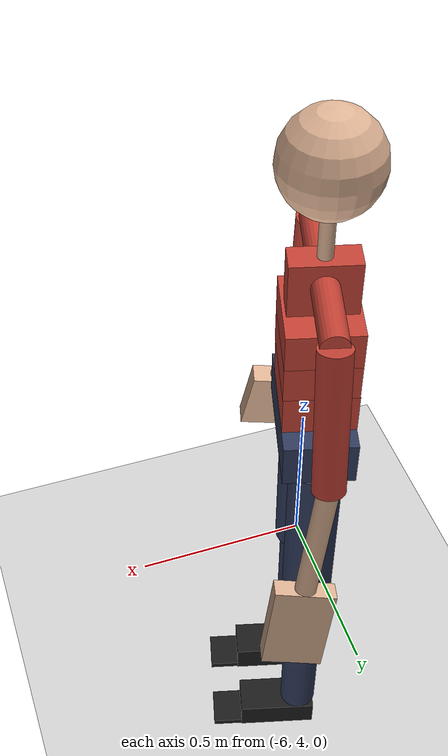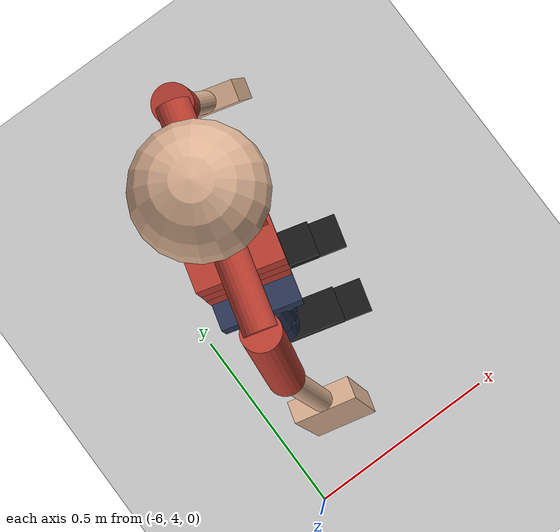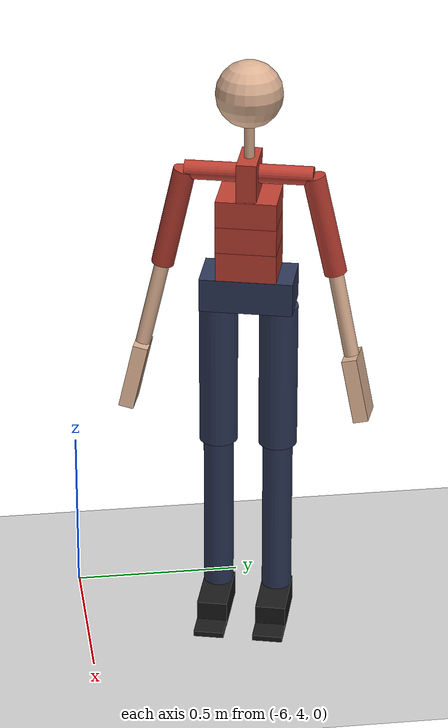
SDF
<sdf version="1.6">
 <world name="robocup_casa">
  <include><uri>model://sun</uri></include>
  <include><uri>model://ground_plane</uri></include>
  <model name="persona_lavanderia">
   <static>true</static>
   <link name="cuerpo">
    <collision name="c0">
     <pose>-5.7981 4.5098 1.0900 0.0000 -0.0000 -0.2660</pose>
     <geometry><box><size>0.1529 0.2785 0.1023</size></box></geometry>
    </collision>
    <visual name="v0_Pelvis">
     <pose>-5.7981 4.5098 1.0900 0.0000 -0.0000 -0.2660</pose>
     <geometry><box><size>0.1529 0.2785 0.1023</size></box></geometry>
     <material><ambient>0.18 0.22 0.35 1</ambient><diffuse>0.18 0.22 0.35 1</diffuse></material>
    </visual>
    <collision name="c1">
     <pose>-5.7986 4.5099 1.1863 0.0000 -0.0000 -0.2660</pose>
     <geometry><box><size>0.1529 0.1807 0.0902</size></box></geometry>
    </collision>
    <visual name="v1_L5">
     <pose>-5.7986 4.5099 1.1863 0.0000 -0.0000 -0.2660</pose>
     <geometry><box><size>0.1529 0.1807 0.0902</size></box></geometry>
     <material><ambient>0.75 0.25 0.20 1</ambient><diffuse>0.75 0.25 0.20 1</diffuse></material>
    </visual>
    <collision name="c2">
     <pose>-5.7976 4.5096 1.2722 0.0000 -0.0000 -0.2660</pose>
     <geometry><box><size>0.1529 0.1807 0.0815</size></box></geometry>
    </collision>
    <visual name="v2_L3">
     <pose>-5.7976 4.5096 1.2722 0.0000 -0.0000 -0.2660</pose>
     <geometry><box><size>0.1529 0.1807 0.0815</size></box></geometry>
     <material><ambient>0.75 0.25 0.20 1</ambient><diffuse>0.75 0.25 0.20 1</diffuse></material>
    </visual>
    <collision name="c3">
     <pose>-5.7976 4.5096 1.3537 0.0000 -0.0000 -0.2660</pose>
     <geometry><box><size>0.1529 0.1807 0.0815</size></box></geometry>
    </collision>
    <visual name="v3_T12">
     <pose>-5.7976 4.5096 1.3537 0.0000 -0.0000 -0.2660</pose>
     <geometry><box><size>0.1529 0.1807 0.0815</size></box></geometry>
     <material><ambient>0.75 0.25 0.20 1</ambient><diffuse>0.75 0.25 0.20 1</diffuse></material>
    </visual>
    <collision name="c4">
     <pose>-5.7976 4.5096 1.4526 0.0000 -0.0000 -0.2660</pose>
     <geometry><box><size>0.1395 0.0594 0.1163</size></box></geometry>
    </collision>
    <visual name="v4_T8">
     <pose>-5.7976 4.5096 1.4526 0.0000 -0.0000 -0.2660</pose>
     <geometry><box><size>0.1395 0.0594 0.1163</size></box></geometry>
     <material><ambient>0.75 0.25 0.20 1</ambient><diffuse>0.75 0.25 0.20 1</diffuse></material>
    </visual>
    <collision name="c5">
     <pose>-5.7976 4.5096 1.5590 0.0000 -0.0000 -0.2660</pose>
     <geometry><cylinder><radius>0.0155</radius><length>0.0965</length></cylinder></geometry>
    </collision>
    <visual name="v5_Neck">
     <pose>-5.7976 4.5096 1.5590 0.0000 -0.0000 -0.2660</pose>
     <geometry><cylinder><radius>0.0155</radius><length>0.0965</length></cylinder></geometry>
     <material><ambient>0.87 0.70 0.58 1</ambient><diffuse>0.87 0.70 0.58 1</diffuse></material>
    </visual>
    <collision name="c6">
     <pose>-5.7966 4.5094 1.7066 0.0000 -0.0000 -0.2660</pose>
     <geometry><sphere><radius>0.0993</radius></sphere></geometry>
    </collision>
    <visual name="v6_Head">
     <pose>-5.7966 4.5094 1.7066 0.0000 -0.0000 -0.2660</pose>
     <geometry><sphere><radius>0.0993</radius></sphere></geometry>
     <material><ambient>0.87 0.70 0.58 1</ambient><diffuse>0.87 0.70 0.58 1</diffuse></material>
    </visual>
    <collision name="c7">
     <pose>-5.8264 4.4040 1.4600 1.5708 -0.0000 -0.2660</pose>
     <geometry><cylinder><radius>0.0282</radius><length>0.1596</length></cylinder></geometry>
    </collision>
    <visual name="v7_RightShoulder">
     <pose>-5.8264 4.4040 1.4600 1.5708 -0.0000 -0.2660</pose>
     <geometry><cylinder><radius>0.0282</radius><length>0.1596</length></cylinder></geometry>
     <material><ambient>0.75 0.25 0.20 1</ambient><diffuse>0.75 0.25 0.20 1</diffuse></material>
    </visual>
    <collision name="c8">
     <pose>-5.8564 4.2940 1.3076 2.9208 -0.0000 -0.2660</pose>
     <geometry><cylinder><radius>0.0339</radius><length>0.3125</length></cylinder></geometry>
    </collision>
    <visual name="v8_RightUpperArm">
     <pose>-5.8564 4.2940 1.3076 2.9208 -0.0000 -0.2660</pose>
     <geometry><cylinder><radius>0.0339</radius><length>0.3125</length></cylinder></geometry>
     <material><ambient>0.75 0.25 0.20 1</ambient><diffuse>0.75 0.25 0.20 1</diffuse></material>
    </visual>
    <collision name="c9">
     <pose>-5.8542 4.2291 1.0314 2.9184 -0.1463 -0.2330</pose>
     <geometry><cylinder><radius>0.0226</radius><length>0.2565</length></cylinder></geometry>
    </collision>
    <visual name="v9_RightForeArm">
     <pose>-5.8542 4.2291 1.0314 2.9184 -0.1463 -0.2330</pose>
     <geometry><cylinder><radius>0.0226</radius><length>0.2565</length></cylinder></geometry>
     <material><ambient>0.87 0.70 0.58 1</ambient><diffuse>0.87 0.70 0.58 1</diffuse></material>
    </visual>
    <collision name="c10">
     <pose>-5.8345 4.1734 0.8148 1.3476 -0.1463 -0.2330</pose>
     <geometry><box><size>0.1283 0.1924 0.0453</size></box></geometry>
    </collision>
    <visual name="v10_RightHand">
     <pose>-5.8345 4.1734 0.8148 1.3476 -0.1463 -0.2330</pose>
     <geometry><box><size>0.1283 0.1924 0.0453</size></box></geometry>
     <material><ambient>0.87 0.70 0.58 1</ambient><diffuse>0.87 0.70 0.58 1</diffuse></material>
    </visual>
    <collision name="c11">
     <pose>-5.7688 4.6153 1.4600 1.5708 -0.0000 -0.2660</pose>
     <geometry><cylinder><radius>0.0282</radius><length>0.1596</length></cylinder></geometry>
    </collision>
    <visual name="v11_LeftShoulder">
     <pose>-5.7688 4.6153 1.4600 1.5708 -0.0000 -0.2660</pose>
     <geometry><cylinder><radius>0.0282</radius><length>0.1596</length></cylinder></geometry>
     <material><ambient>0.75 0.25 0.20 1</ambient><diffuse>0.75 0.25 0.20 1</diffuse></material>
    </visual>
    <collision name="c12">
     <pose>-5.7388 4.7253 1.3076 0.2208 -0.0000 -0.2660</pose>
     <geometry><cylinder><radius>0.0339</radius><length>0.3125</length></cylinder></geometry>
    </collision>
    <visual name="v12_LeftUpperArm">
     <pose>-5.7388 4.7253 1.3076 0.2208 -0.0000 -0.2660</pose>
     <geometry><cylinder><radius>0.0339</radius><length>0.3125</length></cylinder></geometry>
     <material><ambient>0.75 0.25 0.20 1</ambient><diffuse>0.75 0.25 0.20 1</diffuse></material>
    </visual>
    <collision name="c13">
     <pose>-5.7040 4.7801 1.0314 0.2232 -0.1463 -0.2991</pose>
     <geometry><cylinder><radius>0.0226</radius><length>0.2565</length></cylinder></geometry>
    </collision>
    <visual name="v13_LeftForeArm">
     <pose>-5.7040 4.7801 1.0314 0.2232 -0.1463 -0.2991</pose>
     <geometry><cylinder><radius>0.0226</radius><length>0.2565</length></cylinder></geometry>
     <material><ambient>0.87 0.70 0.58 1</ambient><diffuse>0.87 0.70 0.58 1</diffuse></material>
    </visual>
    <collision name="c14">
     <pose>-5.6588 4.8182 0.8148 -1.3476 -0.1463 -0.2991</pose>
     <geometry><box><size>0.1283 0.1924 0.0453</size></box></geometry>
    </collision>
    <visual name="v14_LeftHand">
     <pose>-5.6588 4.8182 0.8148 -1.3476 -0.1463 -0.2991</pose>
     <geometry><box><size>0.1283 0.1924 0.0453</size></box></geometry>
     <material><ambient>0.87 0.70 0.58 1</ambient><diffuse>0.87 0.70 0.58 1</diffuse></material>
    </visual>
    <collision name="c15">
     <pose>-5.8215 4.4225 0.8081 0.0000 -0.0000 -0.2660</pose>
     <geometry><cylinder><radius>0.0584</radius><length>0.4616</length></cylinder></geometry>
    </collision>
    <visual name="v15_RightUpperLeg">
     <pose>-5.8215 4.4225 0.8081 0.0000 -0.0000 -0.2660</pose>
     <geometry><cylinder><radius>0.0584</radius><length>0.4616</length></cylinder></geometry>
     <material><ambient>0.18 0.22 0.35 1</ambient><diffuse>0.18 0.22 0.35 1</diffuse></material>
    </visual>
    <collision name="c16">
     <pose>-5.8216 4.4226 0.3281 0.0000 -0.0000 -0.2660</pose>
     <geometry><cylinder><radius>0.0456</radius><length>0.4983</length></cylinder></geometry>
    </collision>
    <visual name="v16_RightLowerLeg">
     <pose>-5.8216 4.4226 0.3281 0.0000 -0.0000 -0.2660</pose>
     <geometry><cylinder><radius>0.0456</radius><length>0.4983</length></cylinder></geometry>
     <material><ambient>0.18 0.22 0.35 1</ambient><diffuse>0.18 0.22 0.35 1</diffuse></material>
    </visual>
    <collision name="c17">
     <pose>-5.7652 4.4072 0.0395 0.0000 -0.0000 -0.2660</pose>
     <geometry><box><size>0.1953 0.0912 0.0790</size></box></geometry>
    </collision>
    <visual name="v17_RightFoot">
     <pose>-5.7652 4.4072 0.0395 0.0000 -0.0000 -0.2660</pose>
     <geometry><box><size>0.1953 0.0912 0.0790</size></box></geometry>
     <material><ambient>0.10 0.10 0.10 1</ambient><diffuse>0.10 0.10 0.10 1</diffuse></material>
    </visual>
    <collision name="c18">
     <pose>-5.6349 4.3717 0.0128 0.0000 -0.0000 -0.2660</pose>
     <geometry><box><size>0.0747 0.0912 0.0170</size></box></geometry>
    </collision>
    <visual name="v18_RightToe">
     <pose>-5.6349 4.3717 0.0128 0.0000 -0.0000 -0.2660</pose>
     <geometry><box><size>0.0747 0.0912 0.0170</size></box></geometry>
     <material><ambient>0.10 0.10 0.10 1</ambient><diffuse>0.10 0.10 0.10 1</diffuse></material>
    </visual>
    <collision name="c19">
     <pose>-5.7740 4.5968 0.8081 0.0000 -0.0000 -0.2660</pose>
     <geometry><cylinder><radius>0.0584</radius><length>0.4616</length></cylinder></geometry>
    </collision>
    <visual name="v19_LeftUpperLeg">
     <pose>-5.7740 4.5968 0.8081 0.0000 -0.0000 -0.2660</pose>
     <geometry><cylinder><radius>0.0584</radius><length>0.4616</length></cylinder></geometry>
     <material><ambient>0.18 0.22 0.35 1</ambient><diffuse>0.18 0.22 0.35 1</diffuse></material>
    </visual>
    <collision name="c20">
     <pose>-5.7741 4.5969 0.3281 0.0000 -0.0000 -0.2660</pose>
     <geometry><cylinder><radius>0.0456</radius><length>0.4983</length></cylinder></geometry>
    </collision>
    <visual name="v20_LeftLowerLeg">
     <pose>-5.7741 4.5969 0.3281 0.0000 -0.0000 -0.2660</pose>
     <geometry><cylinder><radius>0.0456</radius><length>0.4983</length></cylinder></geometry>
     <material><ambient>0.18 0.22 0.35 1</ambient><diffuse>0.18 0.22 0.35 1</diffuse></material>
    </visual>
    <collision name="c21">
     <pose>-5.7177 4.5815 0.0395 0.0000 -0.0000 -0.2660</pose>
     <geometry><box><size>0.1953 0.0912 0.0790</size></box></geometry>
    </collision>
    <visual name="v21_LeftFoot">
     <pose>-5.7177 4.5815 0.0395 0.0000 -0.0000 -0.2660</pose>
     <geometry><box><size>0.1953 0.0912 0.0790</size></box></geometry>
     <material><ambient>0.10 0.10 0.10 1</ambient><diffuse>0.10 0.10 0.10 1</diffuse></material>
    </visual>
    <collision name="c22">
     <pose>-5.5874 4.5460 0.0128 0.0000 -0.0000 -0.2660</pose>
     <geometry><box><size>0.0747 0.0912 0.0170</size></box></geometry>
    </collision>
    <visual name="v22_LeftToe">
     <pose>-5.5874 4.5460 0.0128 0.0000 -0.0000 -0.2660</pose>
     <geometry><box><size>0.0747 0.0912 0.0170</size></box></geometry>
     <material><ambient>0.10 0.10 0.10 1</ambient><diffuse>0.10 0.10 0.10 1</diffuse></material>
    </visual>
   </link>
  </model>
 </world>
</sdf>
